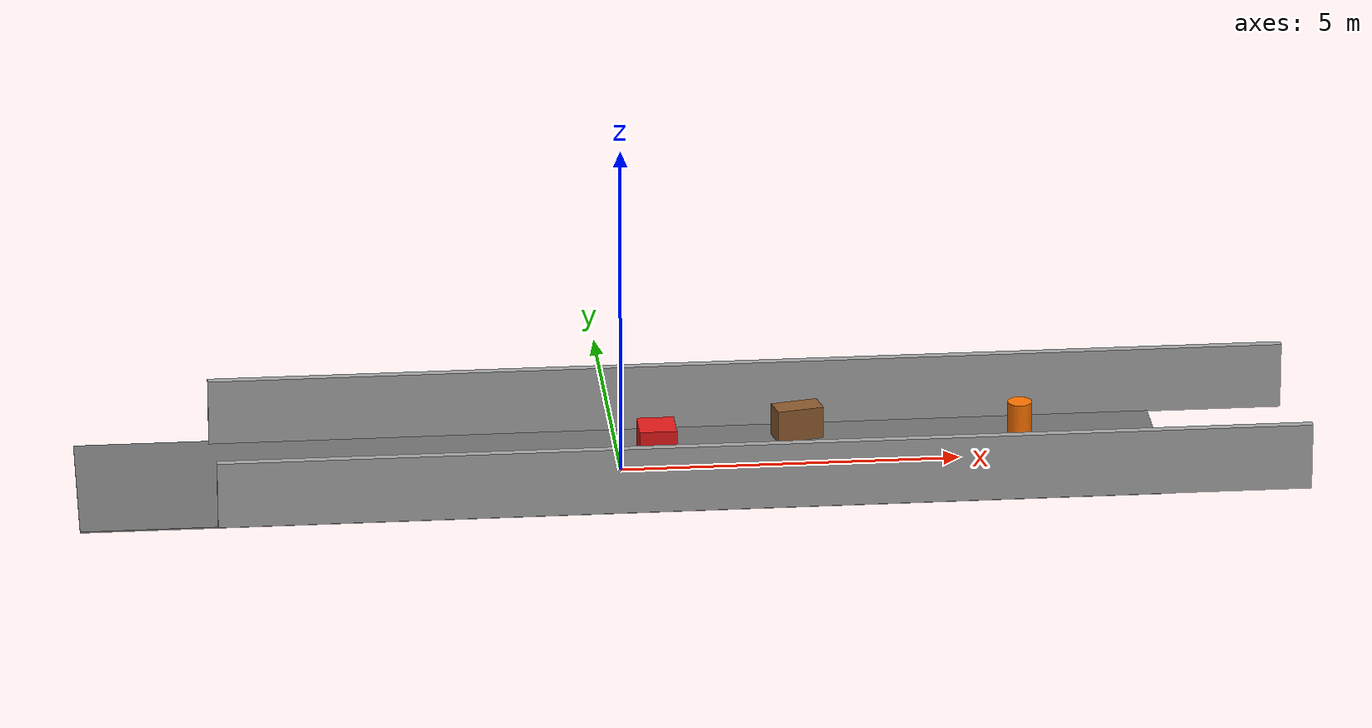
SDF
<?xml version="1.0"?>
<sdf version="1.8">
  <world name="shipyard_corridor">

    <!-- Physics and core Gazebo systems -->
    <physics name="1ms" type="ignored">
      <max_step_size>0.001</max_step_size>
      <real_time_factor>1.0</real_time_factor>
    </physics>

    <plugin filename="ignition-gazebo-physics-system" name="ignition::gazebo::systems::Physics"/>
    <plugin filename="ignition-gazebo-user-commands-system" name="ignition::gazebo::systems::UserCommands"/>
    <plugin filename="ignition-gazebo-scene-broadcaster-system" name="ignition::gazebo::systems::SceneBroadcaster"/>

    <!-- Needed for GPU LiDAR / LaserScan sensors -->
    <plugin filename="libignition-gazebo-sensors-system.so" name="ignition::gazebo::systems::Sensors">
      <render_engine>ogre2</render_engine>
    </plugin>

    <!-- Needed for IMU sensors -->
    <plugin filename="libignition-gazebo-imu-system.so" name="ignition::gazebo::systems::Imu"/>

    <light type="directional" name="sun">
      <cast_shadows>true</cast_shadows>
      <pose>0 0 10 0 0 0</pose>
      <diffuse>0.8 0.8 0.8 1</diffuse>
      <specular>0.2 0.2 0.2 1</specular>
      <direction>-0.5 0.1 -0.9</direction>
    </light>

    <!-- Floor: long indoor corridor / maintenance aisle -->
    <model name="corridor_floor">
      <static>true</static>
      <link name="link">
        <collision name="collision">
          <geometry>
            <box>
              <size>16.0 3.2 0.02</size>
            </box>
          </geometry>
        </collision>
        <visual name="visual">
          <geometry>
            <box>
              <size>16.0 3.2 0.02</size>
            </box>
          </geometry>
          <material>
            <ambient>0.45 0.45 0.45 1</ambient>
            <diffuse>0.45 0.45 0.45 1</diffuse>
          </material>
        </visual>
      </link>
    </model>

    <!-- Left and right corridor walls -->
    <model name="left_corridor_wall">
      <static>true</static>
      <pose>2.0 1.55 0.5 0 0 0</pose>
      <link name="link">
        <collision name="collision">
          <geometry><box><size>16.0 0.12 1.0</size></box></geometry>
        </collision>
        <visual name="visual">
          <geometry><box><size>16.0 0.12 1.0</size></box></geometry>
          <material>
            <ambient>0.65 0.65 0.65 1</ambient>
            <diffuse>0.65 0.65 0.65 1</diffuse>
          </material>
        </visual>
      </link>
    </model>

    <model name="right_corridor_wall">
      <static>true</static>
      <pose>2.0 -1.55 0.5 0 0 0</pose>
      <link name="link">
        <collision name="collision">
          <geometry><box><size>16.0 0.12 1.0</size></box></geometry>
        </collision>
        <visual name="visual">
          <geometry><box><size>16.0 0.12 1.0</size></box></geometry>
          <material>
            <ambient>0.65 0.65 0.65 1</ambient>
            <diffuse>0.65 0.65 0.65 1</diffuse>
          </material>
        </visual>
      </link>
    </model>

    <!-- Start marker: visual only, does not block the rover -->
    <model name="start_zone_marker">
      <static>true</static>
      <pose>-5.0 0 0.012 0 0 0</pose>
      <link name="link">
        <visual name="visual">
          <geometry><box><size>0.8 1.3 0.01</size></box></geometry>
          <material>
            <ambient>0.1 0.25 0.9 1</ambient>
            <diffuse>0.1 0.25 0.9 1</diffuse>
          </material>
        </visual>
      </link>
    </model>

    <!-- Endpoint marker: visual only, does not block the rover -->
    <model name="inspection_endpoint_marker">
      <static>true</static>
      <pose>8.5 0 0.012 0 0 0</pose>
      <link name="link">
        <visual name="visual">
          <geometry><box><size>0.8 1.3 0.01</size></box></geometry>
          <material>
            <ambient>0.1 0.8 0.2 1</ambient>
            <diffuse>0.1 0.8 0.2 1</diffuse>
          </material>
        </visual>
      </link>
    </model>

    <!-- Avoidable red obstruction/hazard in the path -->
    <model name="avoidable_obstruction_red_block">
      <static>true</static>
      <pose>0.5 -0.25 0.4 0 0 0</pose>
      <link name="link">
        <collision name="collision">
          <geometry><box><size>0.55 0.55 0.8</size></box></geometry>
        </collision>
        <visual name="visual">
          <geometry><box><size>0.55 0.55 0.8</size></box></geometry>
          <material>
            <ambient>0.9 0.1 0.1 1</ambient>
            <diffuse>0.9 0.1 0.1 1</diffuse>
          </material>
        </visual>
      </link>
    </model>

    <!-- Maintenance clutter near the walls. These make the world look like a work corridor but still leave a path. -->
    <model name="left_side_crate_1">
      <static>true</static>
      <pose>2.7 1.0 0.25 0 0 0.2</pose>
      <link name="link">
        <collision name="collision"><geometry><box><size>0.7 0.35 0.5</size></box></geometry></collision>
        <visual name="visual"><geometry><box><size>0.7 0.35 0.5</size></box></geometry><material><ambient>0.55 0.35 0.18 1</ambient><diffuse>0.55 0.35 0.18 1</diffuse></material></visual>
      </link>
    </model>

    <model name="right_side_crate_1">
      <static>true</static>
      <pose>4.2 -1.0 0.25 0 0 -0.3</pose>
      <link name="link">
        <collision name="collision"><geometry><box><size>0.8 0.35 0.5</size></box></geometry></collision>
        <visual name="visual"><geometry><box><size>0.8 0.35 0.5</size></box></geometry><material><ambient>0.55 0.35 0.18 1</ambient><diffuse>0.55 0.35 0.18 1</diffuse></material></visual>
      </link>
    </model>

    <model name="maintenance_cone_1">
      <static>true</static>
      <pose>6.0 0.85 0.25 0 0 0</pose>
      <link name="link">
        <collision name="collision"><geometry><cylinder><radius>0.18</radius><length>0.5</length></cylinder></geometry></collision>
        <visual name="visual"><geometry><cylinder><radius>0.18</radius><length>0.5</length></cylinder></geometry><material><ambient>1.0 0.45 0.0 1</ambient><diffuse>1.0 0.45 0.0 1</diffuse></material></visual>
      </link>
    </model>

  </world>
</sdf>
